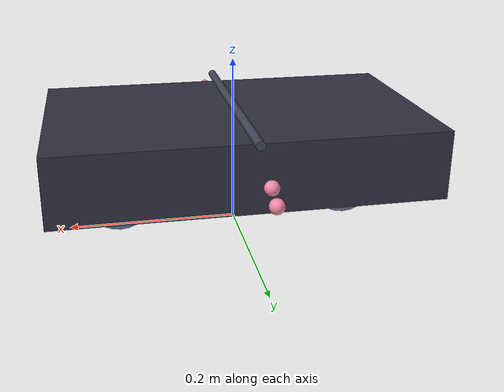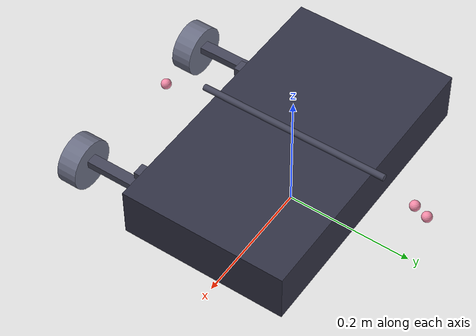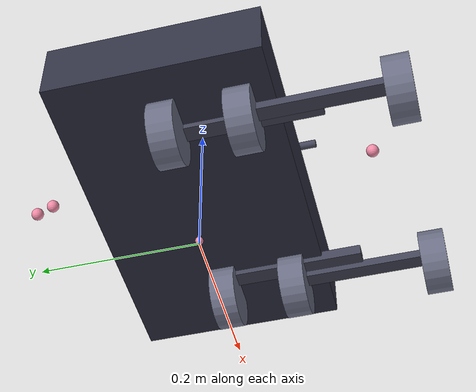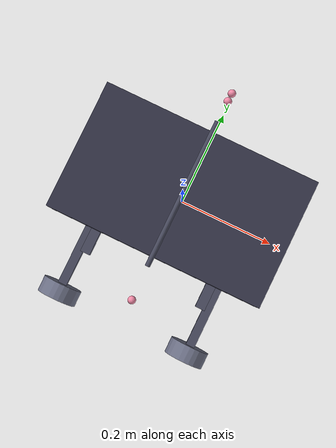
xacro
<?xml version="1.0"?>
<robot name="mars_rover" xmlns:xacro="http://www.ros.org/wiki/xacro">

  <!-- ======================================================================
       PROPERTIES
       ====================================================================== -->

  <!-- Body -->
  <xacro:property name="body_length"  value="0.260" />  <!-- Y dimension -->
  <xacro:property name="body_width"   value="0.440" />  <!-- X dimension -->
  <xacro:property name="body_height"  value="0.080" />  <!-- Z dimension -->
  <xacro:property name="body_mass"    value="0.45"  />
  <xacro:property name="body_z"       value="0.100" />  <!-- centre of body above ground -->

  <!-- Wheels -->
  <xacro:property name="wheel_radius" value="0.040" />
  <xacro:property name="wheel_width"  value="0.032" />
  <xacro:property name="wheel_mass"   value="0.04"  />

  <!-- Axle positions from origin -->
  <xacro:property name="axle_front_y" value="0.180"  />
  <xacro:property name="axle_mid_y"   value="0.0"    />
  <xacro:property name="axle_rear_y"  value="-0.180" />
  <xacro:property name="axle_left_x"  value="-0.140" />
  <xacro:property name="axle_right_x" value="0.140"  />

  <!-- Rocker arms: body pivot to front wheel = 180mm -->
  <xacro:property name="rocker_length"    value="0.180" />
  <xacro:property name="rocker_width"     value="0.020" />
  <xacro:property name="rocker_height"    value="0.015" />
  <xacro:property name="rocker_mass"      value="0.03"  />
  <xacro:property name="rocker_pivot_x"   value="0.125" />  <!-- body pivot X offset -->
  <xacro:property name="rocker_pivot_z"   value="0.060" />  <!-- body pivot Z (at body bottom) -->

  <!-- Bogie arms: 180mm total, pivot in middle -->
  <xacro:property name="bogie_length"     value="0.180" />
  <xacro:property name="bogie_width"      value="0.018" />
  <xacro:property name="bogie_height"     value="0.012" />
  <xacro:property name="bogie_mass"       value="0.02"  />
  <xacro:property name="bogie_half"       value="0.090" />

  <!-- Differential bar -->
  <xacro:property name="diff_bar_length"  value="0.300" />
  <xacro:property name="diff_bar_radius"  value="0.005" />
  <xacro:property name="diff_bar_mass"    value="0.02"  />

  <!-- Joint limits -->
  <xacro:property name="rocker_limit"     value="${15.0 * 3.14159265 / 180.0}" />  <!-- +/-15 deg -->
  <xacro:property name="bogie_limit"      value="${20.0 * 3.14159265 / 180.0}" />  <!-- +/-20 deg -->
  <xacro:property name="steer_limit"      value="${35.0 * 3.14159265 / 180.0}" />  <!-- +/-35 deg -->

  <!-- Catppuccin Mocha colours (RGBA) -->
  <xacro:property name="color_body"    value="0.192 0.196 0.267 1.0" />  <!-- Surface0 #313244 -->
  <xacro:property name="color_wheel"   value="0.424 0.439 0.525 1.0" />  <!-- Overlay0 #6c7086 -->
  <xacro:property name="color_arm"     value="0.271 0.278 0.353 1.0" />  <!-- Surface1 #45475a -->
  <xacro:property name="color_sensor"  value="0.953 0.545 0.659 1.0" />  <!-- Red      #f38ba8 -->

  <!-- ======================================================================
       MATERIALS
       ====================================================================== -->
  <material name="surface0">
    <color rgba="${color_body}" />
  </material>
  <material name="overlay0">
    <color rgba="${color_wheel}" />
  </material>
  <material name="surface1">
    <color rgba="${color_arm}" />
  </material>
  <material name="catppuccin_red">
    <color rgba="${color_sensor}" />
  </material>

  <!-- ======================================================================
       INERTIA MACROS
       ====================================================================== -->

  <!-- Box inertia: mass m, dimensions x y z -->
  <xacro:macro name="box_inertia" params="m x y z">
    <inertial>
      <mass value="${m}" />
      <inertia ixx="${m*(y*y+z*z)/12.0}" ixy="0" ixz="0"
               iyy="${m*(x*x+z*z)/12.0}" iyz="0"
               izz="${m*(x*x+y*y)/12.0}" />
    </inertial>
  </xacro:macro>

  <!-- Cylinder inertia: mass m, radius r, length l (along Z) -->
  <xacro:macro name="cylinder_inertia" params="m r l">
    <inertial>
      <mass value="${m}" />
      <inertia ixx="${m*(3*r*r+l*l)/12.0}" ixy="0" ixz="0"
               iyy="${m*(3*r*r+l*l)/12.0}" iyz="0"
               izz="${m*r*r/2.0}" />
    </inertial>
  </xacro:macro>

  <xacro:macro name="wheel" params="name parent *origin">
    <!-- Wheel link -->
    <link name="${name}">
      <visual>
        <geometry>
          <cylinder radius="${wheel_radius}" length="${wheel_width}" />
        </geometry>
        <material name="overlay0" />
      </visual>
      <collision>
        <geometry>
          <cylinder radius="${wheel_radius}" length="${wheel_width}" />
        </geometry>
      </collision>
      <xacro:cylinder_inertia m="${wheel_mass}" r="${wheel_radius}" l="${wheel_width}" />
    </link>

    <!-- Continuous spinning joint (rotation about cylinder axis) -->
    <joint name="${name}_spin_joint" type="continuous">
      <parent link="${parent}" />
      <child link="${name}" />
      <xacro:insert_block name="origin" />
      <axis xyz="0 0 1" />
      <dynamics damping="0.01" friction="0.005" />
    </joint>
  </xacro:macro>

  <xacro:macro name="steered_wheel" params="prefix parent x_offset y_offset z_offset">
    <!-- Steering link (virtual, small box) -->
    <link name="${prefix}_steer_link">
      <visual>
        <geometry>
          <cylinder radius="0.008" length="0.020" />
        </geometry>
        <material name="surface1" />
      </visual>
      <collision>
        <geometry>
          <cylinder radius="0.008" length="0.020" />
        </geometry>
      </collision>
      <xacro:cylinder_inertia m="0.005" r="0.008" l="0.020" />
    </link>

    <!-- Steering joint: revolute around Z -->
    <joint name="${prefix}_steer_joint" type="revolute">
      <parent link="${parent}" />
      <child link="${prefix}_steer_link" />
      <origin xyz="${x_offset} ${y_offset} ${z_offset}" rpy="0 0 0" />
      <axis xyz="0 0 1" />
      <limit lower="${-steer_limit}" upper="${steer_limit}" effort="2.0" velocity="1.5" />
      <dynamics damping="0.01" friction="0.005" />
    </joint>

    <!-- Wheel on the steering link -->
    <xacro:wheel name="${prefix}_link" parent="${prefix}_steer_link">
      <!-- Wheel cylinder axis is along Z in its frame; we rotate so it aligns with X (axle) -->
      <origin xyz="0 0 0" rpy="${3.14159265/2.0} 0 0" />
    </xacro:wheel>
  </xacro:macro>

  <xacro:macro name="rocker_arm" params="side sign">
    <link name="${side}_rocker_link">
      <visual>
        <origin xyz="0 ${rocker_length/2.0} 0" rpy="0 0 0" />
        <geometry>
          <box size="${rocker_width} ${rocker_length} ${rocker_height}" />
        </geometry>
        <material name="surface1" />
      </visual>
      <collision>
        <origin xyz="0 ${rocker_length/2.0} 0" rpy="0 0 0" />
        <geometry>
          <box size="${rocker_width} ${rocker_length} ${rocker_height}" />
        </geometry>
      </collision>
      <xacro:box_inertia m="${rocker_mass}" x="${rocker_width}" y="${rocker_length}" z="${rocker_height}" />
    </link>

    <joint name="${side}_rocker_joint" type="revolute">
      <parent link="chassis" />
      <child link="${side}_rocker_link" />
      <origin xyz="${sign * rocker_pivot_x} ${-axle_front_y} ${-0.040}" rpy="0 0 0" />
      <axis xyz="1 0 0" />
      <limit lower="${-rocker_limit}" upper="${rocker_limit}" effort="5.0" velocity="0.5" />
      <dynamics damping="0.1" friction="0.05" />
    </joint>

    <xacro:steered_wheel prefix="wheel_f${side[0]}"
                         parent="${side}_rocker_link"
                         x_offset="${sign * 0.015}"
                         y_offset="${rocker_length}"
                         z_offset="-0.020" />

    <link name="${side}_bogie_link">
      <visual>
        <origin xyz="0 0 0" rpy="0 0 0" />
        <geometry>
          <box size="${bogie_width} ${bogie_length} ${bogie_height}" />
        </geometry>
        <material name="surface1" />
      </visual>
      <collision>
        <origin xyz="0 0 0" rpy="0 0 0" />
        <geometry>
          <box size="${bogie_width} ${bogie_length} ${bogie_height}" />
        </geometry>
      </collision>
      <xacro:box_inertia m="${bogie_mass}" x="${bogie_width}" y="${bogie_length}" z="${bogie_height}" />
    </link>

    <joint name="${side}_bogie_joint" type="revolute">
      <parent link="${side}_rocker_link" />
      <child link="${side}_bogie_link" />
      <origin xyz="${sign * 0.015} 0 -0.010" rpy="0 0 0" />
      <axis xyz="1 0 0" />
      <limit lower="${-bogie_limit}" upper="${bogie_limit}" effort="5.0" velocity="0.5" />
      <dynamics damping="0.1" friction="0.05" />
    </joint>

    <link name="wheel_m${side[0]}_link">
      <visual>
        <geometry>
          <cylinder radius="${wheel_radius}" length="${wheel_width}" />
        </geometry>
        <material name="overlay0" />
      </visual>
      <collision>
        <geometry>
          <cylinder radius="${wheel_radius}" length="${wheel_width}" />
        </geometry>
      </collision>
      <xacro:cylinder_inertia m="${wheel_mass}" r="${wheel_radius}" l="${wheel_width}" />
    </link>

    <joint name="wheel_m${side[0]}_spin_joint" type="continuous">
      <parent link="${side}_bogie_link" />
      <child link="wheel_m${side[0]}_link" />
      <origin xyz="0 ${bogie_half} -0.010" rpy="${3.14159265/2.0} 0 0" />
      <axis xyz="0 0 1" />
      <dynamics damping="0.01" friction="0.005" />
    </joint>

    <xacro:steered_wheel prefix="wheel_r${side[0]}"
                         parent="${side}_bogie_link"
                         x_offset="0"
                         y_offset="${-bogie_half}"
                         z_offset="-0.010" />
  </xacro:macro>

  <xacro:macro name="sensor_link" params="name parent x y z roll:=0 pitch:=0 yaw:=0">
    <link name="${name}">
      <visual>
        <geometry>
          <sphere radius="0.008" />
        </geometry>
        <material name="catppuccin_red" />
      </visual>
      <inertial>
        <mass value="0.001" />
        <inertia ixx="1e-7" ixy="0" ixz="0" iyy="1e-7" iyz="0" izz="1e-7" />
      </inertial>
    </link>

    <joint name="${name}_joint" type="fixed">
      <parent link="${parent}" />
      <child link="${name}" />
      <origin xyz="${x} ${y} ${z}" rpy="${roll} ${pitch} ${yaw}" />
    </joint>
  </xacro:macro>

  <link name="base_link">
    <visual>
      <origin xyz="0 0 0.005" rpy="0 0 0" />
      <geometry>
        <sphere radius="0.005" />
      </geometry>
      <material name="catppuccin_red" />
    </visual>
    <inertial>
      <mass value="0.001" />
      <inertia ixx="1e-7" ixy="0" ixz="0" iyy="1e-7" iyz="0" izz="1e-7" />
    </inertial>
  </link>

  <link name="base_footprint">
    <inertial>
      <mass value="0.001" />
      <inertia ixx="1e-7" ixy="0" ixz="0" iyy="1e-7" iyz="0" izz="1e-7" />
    </inertial>
  </link>

  <joint name="base_footprint_joint" type="fixed">
    <parent link="base_link" />
    <child link="base_footprint" />
    <origin xyz="0 0 0" rpy="0 0 0" />
  </joint>

  <link name="chassis">
    <visual>
      <geometry>
        <box size="${body_width} ${body_length} ${body_height}" />
      </geometry>
      <material name="surface0" />
    </visual>
    <collision>
      <geometry>
        <box size="${body_width} ${body_length} ${body_height}" />
      </geometry>
    </collision>
    <xacro:box_inertia m="${body_mass}" x="${body_width}" y="${body_length}" z="${body_height}" />
  </link>

  <joint name="chassis_joint" type="fixed">
    <parent link="base_link" />
    <child link="chassis" />
    <origin xyz="0 0 ${body_z}" rpy="0 0 0" />
  </joint>

  <xacro:rocker_arm side="left"  sign="-1" />
  <xacro:rocker_arm side="right" sign="1"  />

  <link name="differential_bar_link">
    <visual>
      <origin xyz="0 0 0" rpy="${3.14159265/2.0} 0 0" />
      <geometry>
        <cylinder radius="${diff_bar_radius}" length="${diff_bar_length}" />
      </geometry>
      <material name="surface1" />
    </visual>
    <collision>
      <origin xyz="0 0 0" rpy="${3.14159265/2.0} 0 0" />
      <geometry>
        <cylinder radius="${diff_bar_radius}" length="${diff_bar_length}" />
      </geometry>
    </collision>
    <xacro:cylinder_inertia m="${diff_bar_mass}" r="${diff_bar_radius}" l="${diff_bar_length}" />
  </link>

  <joint name="differential_bar_joint" type="fixed">
    <parent link="chassis" />
    <child link="differential_bar_link" />
    <origin xyz="0 0 0.045" rpy="0 0 0" />
  </joint>

  <xacro:sensor_link name="lidar_link" parent="chassis"
                     x="0" y="0" z="${0.085 - body_z}" />

  <!-- IMU: centre of body, Z=0.090 from base_link -->
  <xacro:sensor_link name="imu_link" parent="chassis"
                     x="0" y="0" z="${0.090 - body_z}" />

  <!-- GPS: top deck rear, Y=-0.100, Z=0.085 from base_link -->
  <xacro:sensor_link name="gps_link" parent="chassis"
                     x="0" y="-0.100" z="${0.085 - body_z}" />

  <!-- Front camera: Y=+0.220, Z=0.110 from base_link -->
  <xacro:sensor_link name="camera_front" parent="chassis"
                     x="0" y="0.220" z="${0.110 - body_z}" />

  <!-- Rear camera: Y=-0.220, Z=0.110 from base_link -->
  <xacro:sensor_link name="camera_rear" parent="chassis"
                     x="0" y="-0.220" z="${0.110 - body_z}"
                     yaw="${3.14159265}" />

  <!-- Left camera: X=-0.130, Z=0.110 from base_link -->
  <xacro:sensor_link name="camera_left" parent="chassis"
                     x="-0.130" y="0" z="${0.110 - body_z}"
                     yaw="${3.14159265/2.0}" />

  <!-- Right camera: X=+0.130, Z=0.110 from base_link -->
  <xacro:sensor_link name="camera_right" parent="chassis"
                     x="0.130" y="0" z="${0.110 - body_z}"
                     yaw="${-3.14159265/2.0}" />

  <!-- Depth camera (OAK-D Lite): front, Y=+0.200, Z=0.120 from base_link -->
  <xacro:sensor_link name="depth_camera" parent="chassis"
                     x="0" y="0.200" z="${0.120 - body_z}" />

  <gazebo>
    <plugin name="gazebo_ros_control" filename="libgazebo_ros_control.so">
      <robotNamespace>/</robotNamespace>
    </plugin>
  </gazebo>

  <gazebo>
    <plugin name="differential_drive" filename="libgazebo_ros_diff_drive.so">
      <ros>
        <namespace>/</namespace>
        <remapping>cmd_vel:=cmd_vel</remapping>
        <remapping>odom:=wheel_odom</remapping>
      </ros>
      <update_rate>30</update_rate>
      <num_wheel_pairs>3</num_wheel_pairs>
      <left_joint>wheel_fl_link_spin_joint</left_joint>
      <right_joint>wheel_fr_link_spin_joint</right_joint>
      <left_joint>wheel_ml_spin_joint</left_joint>
      <right_joint>wheel_mr_spin_joint</right_joint>
      <left_joint>wheel_rl_link_spin_joint</left_joint>
      <right_joint>wheel_rr_link_spin_joint</right_joint>
      <wheel_separation>0.280</wheel_separation>
      <wheel_diameter>0.080</wheel_diameter>
      <max_wheel_torque>5.0</max_wheel_torque>
      <max_wheel_acceleration>2.0</max_wheel_acceleration>
      <publish_odom>true</publish_odom>
      <publish_odom_tf>false</publish_odom_tf>
      <publish_wheel_tf>true</publish_wheel_tf>
      <odometry_frame>odom</odometry_frame>
      <robot_base_frame>base_link</robot_base_frame>
    </plugin>
  </gazebo>

  <gazebo>
    <plugin name="joint_state_publisher" filename="libgazebo_ros_joint_state_publisher.so">
      <ros>
        <namespace>/</namespace>
        <remapping>joint_states:=joint_states</remapping>
      </ros>
      <update_rate>30</update_rate>
      <joint_name>left_rocker_joint</joint_name>
      <joint_name>right_rocker_joint</joint_name>
      <joint_name>left_bogie_joint</joint_name>
      <joint_name>right_bogie_joint</joint_name>
      <joint_name>wheel_fl_steer_joint</joint_name>
      <joint_name>wheel_fr_steer_joint</joint_name>
      <joint_name>wheel_rl_steer_joint</joint_name>
      <joint_name>wheel_rr_steer_joint</joint_name>
      <joint_name>wheel_fl_link_spin_joint</joint_name>
      <joint_name>wheel_fr_link_spin_joint</joint_name>
      <joint_name>wheel_ml_spin_joint</joint_name>
      <joint_name>wheel_mr_spin_joint</joint_name>
      <joint_name>wheel_rl_link_spin_joint</joint_name>
      <joint_name>wheel_rr_link_spin_joint</joint_name>
    </plugin>
  </gazebo>

  <!-- Gazebo material colours (Gazebo ignores URDF materials) -->
  <gazebo reference="chassis">
    <material>Gazebo/DarkGrey</material>
  </gazebo>
  <gazebo reference="wheel_fl_link"><material>Gazebo/Grey</material></gazebo>
  <gazebo reference="wheel_fr_link"><material>Gazebo/Grey</material></gazebo>
  <gazebo reference="wheel_ml_link"><material>Gazebo/Grey</material></gazebo>
  <gazebo reference="wheel_mr_link"><material>Gazebo/Grey</material></gazebo>
  <gazebo reference="wheel_rl_link"><material>Gazebo/Grey</material></gazebo>
  <gazebo reference="wheel_rr_link"><material>Gazebo/Grey</material></gazebo>
  <gazebo reference="left_rocker_link"><material>Gazebo/DarkGrey</material></gazebo>
  <gazebo reference="right_rocker_link"><material>Gazebo/DarkGrey</material></gazebo>
  <gazebo reference="left_bogie_link"><material>Gazebo/DarkGrey</material></gazebo>
  <gazebo reference="right_bogie_link"><material>Gazebo/DarkGrey</material></gazebo>
  <gazebo reference="lidar_link"><material>Gazebo/Red</material></gazebo>

  <!-- LiDAR sensor plugin -->
  <gazebo reference="lidar_link">
    <sensor type="ray" name="lidar">
      <pose>0 0 0 0 0 0</pose>
      <visualize>true</visualize>
      <update_rate>10</update_rate>
      <ray>
        <scan>
          <horizontal>
            <samples>360</samples>
            <resolution>1</resolution>
            <min_angle>-3.14159</min_angle>
            <max_angle>3.14159</max_angle>
          </horizontal>
        </scan>
        <range>
          <min>0.10</min>
          <max>12.0</max>
          <resolution>0.01</resolution>
        </range>
      </ray>
      <plugin name="gazebo_ros_lidar" filename="libgazebo_ros_ray_sensor.so">
        <ros>
          <namespace>/</namespace>
          <remapping>~/out:=scan</remapping>
        </ros>
        <output_type>sensor_msgs/LaserScan</output_type>
        <frame_name>lidar_link</frame_name>
      </plugin>
    </sensor>
  </gazebo>

  <!-- IMU sensor plugin -->
  <gazebo reference="imu_link">
    <sensor type="imu" name="imu">
      <always_on>true</always_on>
      <update_rate>100</update_rate>
      <plugin name="gazebo_ros_imu" filename="libgazebo_ros_imu_sensor.so">
        <ros>
          <namespace>/</namespace>
          <remapping>~/out:=imu/data</remapping>
        </ros>
        <frame_name>imu_link</frame_name>
      </plugin>
    </sensor>
  </gazebo>

  <!-- Depth camera (OAK-D Lite) plugin -->
  <gazebo reference="depth_camera">
    <sensor type="depth" name="depth_camera">
      <always_on>true</always_on>
      <update_rate>15</update_rate>
      <camera>
        <horizontal_fov>1.20428</horizontal_fov>
        <image>
          <width>640</width>
          <height>480</height>
          <format>R8G8B8</format>
        </image>
        <clip>
          <near>0.2</near>
          <far>10.0</far>
        </clip>
      </camera>
      <plugin name="gazebo_ros_depth_camera" filename="libgazebo_ros_camera.so">
        <ros>
          <namespace>/</namespace>
          <remapping>~/image_raw:=depth/image_raw</remapping>
          <remapping>~/depth/image_raw:=depth/depth_image</remapping>
          <remapping>~/camera_info:=depth/camera_info</remapping>
          <remapping>~/points:=depth/points</remapping>
        </ros>
        <frame_name>depth_camera</frame_name>
      </plugin>
    </sensor>
  </gazebo>

</robot>
